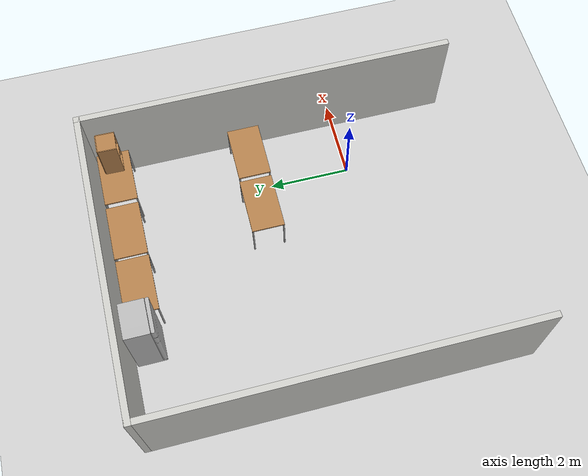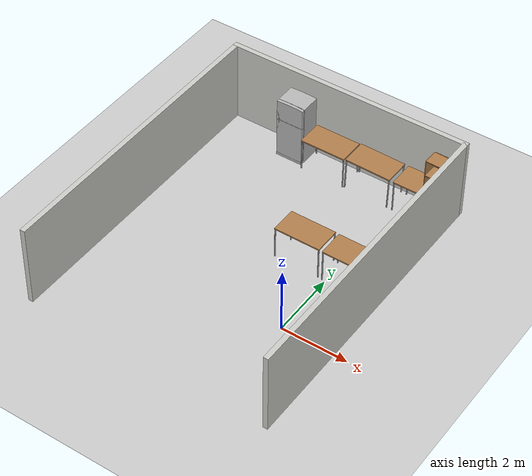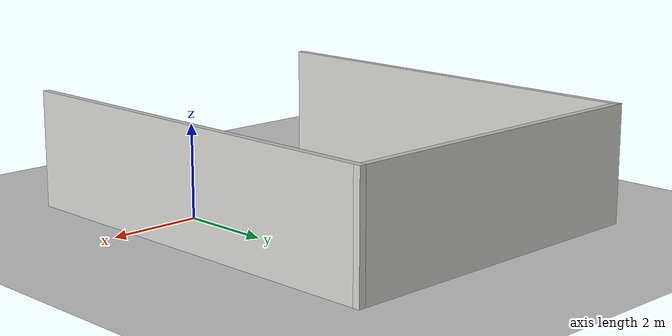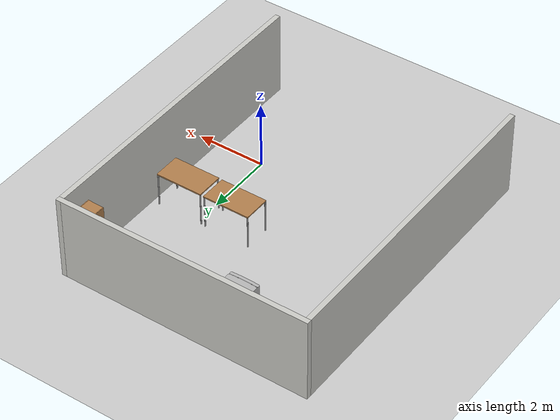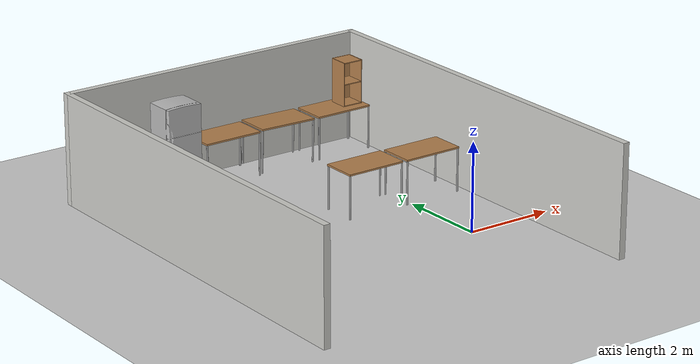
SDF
<sdf version="1.6">
 <world name="default">
  <model name="ground_plane">
   <static>1</static>
   <link name="link">
    <collision name="collision">
     <geometry><plane><normal>0 0 1</normal><size>100 100</size></plane></geometry>
     <surface><friction><ode><mu>100</mu><mu2>50</mu2></ode></friction></surface>
    </collision>
    <visual name="visual">
     <cast_shadows>0</cast_shadows>
     <geometry><plane><normal>0 0 1</normal><size>100 100</size></plane></geometry>
     <material>
      <script><uri>file://media/materials/scripts/gazebo.material</uri><name>Gazebo/Grey</name></script>
     </material>
    </visual>
   </link>
  </model>
  <light name="sun" type="directional">
   <pose>0 0 10 0 -0 0</pose>
   <diffuse>0.8 0.8 0.8 1</diffuse>
   <specular>0.1 0.1 0.1 1</specular>
   <attenuation>
    <range>1000</range>
    <constant>0.9</constant>
    <linear>0.01</linear>
    <quadratic>0.001</quadratic>
   </attenuation>
   <direction>-0.5 0.5 -1</direction>
  </light>
  <gravity>0 0 -9.8</gravity>
  <magnetic_field>6e-06 2.3e-05 -4.2e-05</magnetic_field>
  <atmosphere type="adiabatic"/>
  <physics name="default_physics" default="0" type="ode">
   <max_step_size>0.001</max_step_size>
   <real_time_factor>1</real_time_factor>
   <real_time_update_rate>1000</real_time_update_rate>
  </physics>
  <scene><ambient>0.4 0.4 0.4 1</ambient><background>0.7 0.7 0.7 1</background><shadows>1</shadows></scene>
  <spherical_coordinates>
   <surface_model>EARTH_WGS84</surface_model>
   <latitude_deg>0</latitude_deg>
   <longitude_deg>0</longitude_deg>
   <elevation>0</elevation>
   <heading_deg>0</heading_deg>
  </spherical_coordinates>
  <model name="cabinet_1">
   <static>1</static>
   <link name="cabinet_bottom_plate">
    <inertial>
     <pose>0 0 -1 0 -0 0</pose>
     <inertia><ixx>2.05</ixx><ixy>0</ixy><ixz>0</ixz><iyy>2.05</iyy><iyz>0</iyz><izz>2.05</izz></inertia>
     <mass>25</mass>
    </inertial>
    <collision name="cabinet_bottom_plate_geom">
     <pose>0 0 0.01 0 -0 0</pose>
     <geometry><box><size>0.45 0.45 0.02</size></box></geometry>
    </collision>
    <visual name="cabinet_bottom_plate_geom_visual">
     <pose>0 0 0.01 0 -0 0</pose>
     <geometry><box><size>0.45 0.45 0.02</size></box></geometry>
     <material>
      <script><uri>file://media/materials/scripts/gazebo.material</uri><name>Gazebo/Wood</name></script>
     </material>
    </visual>
    <collision name="cabinet_bottom_plate_geom_cabinet_back_plate">
     <pose>0.235 0 0.51 0 -0 0</pose>
     <geometry><box><size>0.02 0.45 1.02</size></box></geometry>
    </collision>
    <visual name="cabinet_bottom_plate_geom_cabinet_back_plate_visual">
     <pose>0.235 0 0.51 0 -0 0</pose>
     <geometry><box><size>0.02 0.45 1.02</size></box></geometry>
     <material>
      <script><uri>file://media/materials/scripts/gazebo.material</uri><name>Gazebo/Wood</name></script>
     </material>
    </visual>
    <collision name="cabinet_bottom_plate_geom_cabinet_left_plate">
     <pose>0 0.235 0.51 0 -0 0</pose>
     <geometry><box><size>0.45 0.02 1.02</size></box></geometry>
    </collision>
    <visual name="cabinet_bottom_plate_geom_cabinet_left_plate_visual">
     <pose>0 0.235 0.51 0 -0 0</pose>
     <geometry><box><size>0.45 0.02 1.02</size></box></geometry>
     <material>
      <script><uri>file://media/materials/scripts/gazebo.material</uri><name>Gazebo/Wood</name></script>
     </material>
    </visual>
    <collision name="cabinet_bottom_plate_geom_cabinet_middle_plate">
     <pose>0 0 0.51 0 -0 0</pose>
     <geometry><box><size>0.45 0.45 0.02</size></box></geometry>
    </collision>
    <visual name="cabinet_bottom_plate_geom_cabinet_middle_plate_visual">
     <pose>0 0 0.51 0 -0 0</pose>
     <geometry><box><size>0.45 0.45 0.02</size></box></geometry>
     <material>
      <script><uri>file://media/materials/scripts/gazebo.material</uri><name>Gazebo/Wood</name></script>
     </material>
    </visual>
    <collision name="cabinet_bottom_plate_geom_cabinet_right_plate">
     <pose>0 -0.235 0.51 0 -0 0</pose>
     <geometry><box><size>0.45 0.02 1.02</size></box></geometry>
    </collision>
    <visual name="cabinet_bottom_plate_geom_cabinet_right_plate_visual">
     <pose>0 -0.235 0.51 0 -0 0</pose>
     <geometry><box><size>0.45 0.02 1.02</size></box></geometry>
     <material>
      <script><uri>file://media/materials/scripts/gazebo.material</uri><name>Gazebo/Wood</name></script>
     </material>
    </visual>
    <collision name="cabinet_bottom_plate_geom_cabinet_top_plate">
     <pose>0 0 1.01 0 -0 0</pose>
     <geometry><box><size>0.45 0.45 0.02</size></box></geometry>
    </collision>
    <visual name="cabinet_bottom_plate_geom_cabinet_top_plate_visual">
     <pose>0 0 1.01 0 -0 0</pose>
     <geometry><box><size>0.45 0.45 0.02</size></box></geometry>
     <material>
      <script><uri>file://media/materials/scripts/gazebo.material</uri><name>Gazebo/Wood</name></script>
     </material>
    </visual>
   </link>
   <pose>1.03519 5.73648 1.03813 0 -0 1.55134</pose>
  </model>
  <model name="table_0">
   <static>0</static>
   <link name="link">
    <collision name="surface">
     <pose>0 0 1 0 -0 0</pose>
     <geometry><box><size>1.5 0.8 0.03</size></box></geometry>
     <surface><friction><ode><mu>0.6</mu><mu2>0.6</mu2></ode></friction></surface>
    </collision>
    <visual name="visual1">
     <pose>0 0 1 0 -0 0</pose>
     <geometry><box><size>1.4 0.8 0.04</size></box></geometry>
     <material>
      <script><uri>file://media/materials/scripts/gazebo.material</uri><name>Gazebo/Wood</name></script>
     </material>
    </visual>
    <collision name="front_left_leg">
     <pose>0.68 0.38 0.5 0 -0 0</pose>
     <geometry><cylinder><radius>0.02</radius><length>1</length></cylinder></geometry>
    </collision>
    <visual name="front_left_leg">
     <pose>0.68 0.38 0.5 0 -0 0</pose>
     <geometry><cylinder><radius>0.02</radius><length>1</length></cylinder></geometry>
     <material>
      <script><uri>file://media/materials/scripts/gazebo.material</uri><name>Gazebo/Grey</name></script>
     </material>
    </visual>
    <collision name="front_right_leg">
     <pose>0.68 -0.38 0.5 0 -0 0</pose>
     <geometry><cylinder><radius>0.02</radius><length>1</length></cylinder></geometry>
    </collision>
    <visual name="front_right_leg">
     <pose>0.68 -0.38 0.5 0 -0 0</pose>
     <geometry><cylinder><radius>0.02</radius><length>1</length></cylinder></geometry>
     <material>
      <script><uri>file://media/materials/scripts/gazebo.material</uri><name>Gazebo/Grey</name></script>
     </material>
    </visual>
    <collision name="back_right_leg">
     <pose>-0.68 -0.38 0.5 0 -0 0</pose>
     <geometry><cylinder><radius>0.02</radius><length>1</length></cylinder></geometry>
    </collision>
    <visual name="back_right_leg">
     <pose>-0.68 -0.38 0.5 0 -0 0</pose>
     <geometry><cylinder><radius>0.02</radius><length>1</length></cylinder></geometry>
     <material>
      <script><uri>file://media/materials/scripts/gazebo.material</uri><name>Gazebo/Grey</name></script>
     </material>
    </visual>
    <collision name="back_left_leg">
     <pose>-0.68 0.38 0.5 0 -0 0</pose>
     <geometry><cylinder><radius>0.02</radius><length>1</length></cylinder></geometry>
    </collision>
    <visual name="back_left_leg">
     <pose>-0.68 0.38 0.5 0 -0 0</pose>
     <geometry><cylinder><radius>0.02</radius><length>1</length></cylinder></geometry>
     <material>
      <script><uri>file://media/materials/scripts/gazebo.material</uri><name>Gazebo/Grey</name></script>
     </material>
    </visual>
    <inertial>
     <inertia><ixx>1</ixx><ixy>0</ixy><ixz>0</ixz><iyy>1</iyy><iyz>0</iyz><izz>1</izz></inertia>
     <mass>1</mass>
    </inertial>
   </link>
   <pose>0.667356 5.73439 -2e-06 -1e-06 3e-06 -4e-05</pose>
  </model>
  <plugin name="some_shit" filename="libgazebo_tutorials.so"/>
  <model name="table">
   <static>0</static>
   <link name="link">
    <collision name="surface">
     <pose>0 0 1 0 -0 0</pose>
     <geometry><box><size>1.5 0.8 0.03</size></box></geometry>
     <surface><friction><ode><mu>0.6</mu><mu2>0.6</mu2></ode></friction></surface>
    </collision>
    <visual name="visual1">
     <pose>0 0 1 0 -0 0</pose>
     <geometry><box><size>1.4 0.8 0.04</size></box></geometry>
     <material>
      <script><uri>file://media/materials/scripts/gazebo.material</uri><name>Gazebo/Wood</name></script>
     </material>
    </visual>
    <collision name="front_left_leg">
     <pose>0.68 0.38 0.5 0 -0 0</pose>
     <geometry><cylinder><radius>0.02</radius><length>1</length></cylinder></geometry>
    </collision>
    <visual name="front_left_leg">
     <pose>0.68 0.38 0.5 0 -0 0</pose>
     <geometry><cylinder><radius>0.02</radius><length>1</length></cylinder></geometry>
     <material>
      <script><uri>file://media/materials/scripts/gazebo.material</uri><name>Gazebo/Grey</name></script>
     </material>
    </visual>
    <collision name="front_right_leg">
     <pose>0.68 -0.38 0.5 0 -0 0</pose>
     <geometry><cylinder><radius>0.02</radius><length>1</length></cylinder></geometry>
    </collision>
    <visual name="front_right_leg">
     <pose>0.68 -0.38 0.5 0 -0 0</pose>
     <geometry><cylinder><radius>0.02</radius><length>1</length></cylinder></geometry>
     <material>
      <script><uri>file://media/materials/scripts/gazebo.material</uri><name>Gazebo/Grey</name></script>
     </material>
    </visual>
    <collision name="back_right_leg">
     <pose>-0.68 -0.38 0.5 0 -0 0</pose>
     <geometry><cylinder><radius>0.02</radius><length>1</length></cylinder></geometry>
    </collision>
    <visual name="back_right_leg">
     <pose>-0.68 -0.38 0.5 0 -0 0</pose>
     <geometry><cylinder><radius>0.02</radius><length>1</length></cylinder></geometry>
     <material>
      <script><uri>file://media/materials/scripts/gazebo.material</uri><name>Gazebo/Grey</name></script>
     </material>
    </visual>
    <collision name="back_left_leg">
     <pose>-0.68 0.38 0.5 0 -0 0</pose>
     <geometry><cylinder><radius>0.02</radius><length>1</length></cylinder></geometry>
    </collision>
    <visual name="back_left_leg">
     <pose>-0.68 0.38 0.5 0 -0 0</pose>
     <geometry><cylinder><radius>0.02</radius><length>1</length></cylinder></geometry>
     <material>
      <script><uri>file://media/materials/scripts/gazebo.material</uri><name>Gazebo/Grey</name></script>
     </material>
    </visual>
    <inertial>
     <inertia><ixx>1</ixx><ixy>0</ixy><ixz>0</ixz><iyy>1</iyy><iyz>0</iyz><izz>1</izz></inertia>
     <mass>1</mass>
    </inertial>
   </link>
   <pose>-2.30023 5.7343 -2e-06 -0 3e-06 -8e-06</pose>
  </model>
  <model name="table_1">
   <static>0</static>
   <link name="link">
    <collision name="surface">
     <pose>0 0 1 0 -0 0</pose>
     <geometry><box><size>1.5 0.8 0.03</size></box></geometry>
     <surface><friction><ode><mu>0.6</mu><mu2>0.6</mu2></ode></friction></surface>
    </collision>
    <visual name="visual1">
     <pose>0 0 1 0 -0 0</pose>
     <geometry><box><size>1.4 0.8 0.04</size></box></geometry>
     <material>
      <script><uri>file://media/materials/scripts/gazebo.material</uri><name>Gazebo/Wood</name></script>
     </material>
    </visual>
    <collision name="front_left_leg">
     <pose>0.68 0.38 0.5 0 -0 0</pose>
     <geometry><cylinder><radius>0.02</radius><length>1</length></cylinder></geometry>
    </collision>
    <visual name="front_left_leg">
     <pose>0.68 0.38 0.5 0 -0 0</pose>
     <geometry><cylinder><radius>0.02</radius><length>1</length></cylinder></geometry>
     <material>
      <script><uri>file://media/materials/scripts/gazebo.material</uri><name>Gazebo/Grey</name></script>
     </material>
    </visual>
    <collision name="front_right_leg">
     <pose>0.68 -0.38 0.5 0 -0 0</pose>
     <geometry><cylinder><radius>0.02</radius><length>1</length></cylinder></geometry>
    </collision>
    <visual name="front_right_leg">
     <pose>0.68 -0.38 0.5 0 -0 0</pose>
     <geometry><cylinder><radius>0.02</radius><length>1</length></cylinder></geometry>
     <material>
      <script><uri>file://media/materials/scripts/gazebo.material</uri><name>Gazebo/Grey</name></script>
     </material>
    </visual>
    <collision name="back_right_leg">
     <pose>-0.68 -0.38 0.5 0 -0 0</pose>
     <geometry><cylinder><radius>0.02</radius><length>1</length></cylinder></geometry>
    </collision>
    <visual name="back_right_leg">
     <pose>-0.68 -0.38 0.5 0 -0 0</pose>
     <geometry><cylinder><radius>0.02</radius><length>1</length></cylinder></geometry>
     <material>
      <script><uri>file://media/materials/scripts/gazebo.material</uri><name>Gazebo/Grey</name></script>
     </material>
    </visual>
    <collision name="back_left_leg">
     <pose>-0.68 0.38 0.5 0 -0 0</pose>
     <geometry><cylinder><radius>0.02</radius><length>1</length></cylinder></geometry>
    </collision>
    <visual name="back_left_leg">
     <pose>-0.68 0.38 0.5 0 -0 0</pose>
     <geometry><cylinder><radius>0.02</radius><length>1</length></cylinder></geometry>
     <material>
      <script><uri>file://media/materials/scripts/gazebo.material</uri><name>Gazebo/Grey</name></script>
     </material>
    </visual>
    <inertial>
     <inertia><ixx>1</ixx><ixy>0</ixy><ixz>0</ixz><iyy>1</iyy><iyz>0</iyz><izz>1</izz></inertia>
     <mass>1</mass>
    </inertial>
   </link>
   <pose>-0.871006 5.73829 0.015105 -3e-06 0.021582 -1.1e-05</pose>
  </model>
  <model name="Fridge">
   <pose>-3.90809 5.4327 0 0 -0 0</pose>
   <static>1</static>
   <link name="base">
    <visual name="visual">
     <geometry><mesh><uri>model://fridge/model.dae</uri><scale>1 1 1</scale></mesh></geometry>
    </visual>
    <collision name="collision">
     <geometry><mesh><uri>model://fridge/model.dae</uri><scale>1 1 1</scale></mesh></geometry>
    </collision>
   </link>
  </model>
  <model name="table_2">
   <static>0</static>
   <link name="link">
    <collision name="surface">
     <pose>0 0 1 0 -0 0</pose>
     <geometry><box><size>1.5 0.8 0.03</size></box></geometry>
     <surface><friction><ode><mu>0.6</mu><mu2>0.6</mu2></ode></friction></surface>
    </collision>
    <visual name="visual1">
     <pose>0 0 1 0 -0 0</pose>
     <geometry><box><size>1.4 0.8 0.04</size></box></geometry>
     <material>
      <script><uri>file://media/materials/scripts/gazebo.material</uri><name>Gazebo/Wood</name></script>
     </material>
    </visual>
    <collision name="front_left_leg">
     <pose>0.68 0.38 0.5 0 -0 0</pose>
     <geometry><cylinder><radius>0.02</radius><length>1</length></cylinder></geometry>
    </collision>
    <visual name="front_left_leg">
     <pose>0.68 0.38 0.5 0 -0 0</pose>
     <geometry><cylinder><radius>0.02</radius><length>1</length></cylinder></geometry>
     <material>
      <script><uri>file://media/materials/scripts/gazebo.material</uri><name>Gazebo/Grey</name></script>
     </material>
    </visual>
    <collision name="front_right_leg">
     <pose>0.68 -0.38 0.5 0 -0 0</pose>
     <geometry><cylinder><radius>0.02</radius><length>1</length></cylinder></geometry>
    </collision>
    <visual name="front_right_leg">
     <pose>0.68 -0.38 0.5 0 -0 0</pose>
     <geometry><cylinder><radius>0.02</radius><length>1</length></cylinder></geometry>
     <material>
      <script><uri>file://media/materials/scripts/gazebo.material</uri><name>Gazebo/Grey</name></script>
     </material>
    </visual>
    <collision name="back_right_leg">
     <pose>-0.68 -0.38 0.5 0 -0 0</pose>
     <geometry><cylinder><radius>0.02</radius><length>1</length></cylinder></geometry>
    </collision>
    <visual name="back_right_leg">
     <pose>-0.68 -0.38 0.5 0 -0 0</pose>
     <geometry><cylinder><radius>0.02</radius><length>1</length></cylinder></geometry>
     <material>
      <script><uri>file://media/materials/scripts/gazebo.material</uri><name>Gazebo/Grey</name></script>
     </material>
    </visual>
    <collision name="back_left_leg">
     <pose>-0.68 0.38 0.5 0 -0 0</pose>
     <geometry><cylinder><radius>0.02</radius><length>1</length></cylinder></geometry>
    </collision>
    <visual name="back_left_leg">
     <pose>-0.68 0.38 0.5 0 -0 0</pose>
     <geometry><cylinder><radius>0.02</radius><length>1</length></cylinder></geometry>
     <material>
      <script><uri>file://media/materials/scripts/gazebo.material</uri><name>Gazebo/Grey</name></script>
     </material>
    </visual>
    <inertial>
     <inertia><ixx>1</ixx><ixy>0</ixy><ixz>0</ixz><iyy>1</iyy><iyz>0</iyz><izz>1</izz></inertia>
     <mass>1</mass>
    </inertial>
   </link>
   <pose>0.569748 2.42399 -1e-06 -1e-06 -0 2.3e-05</pose>
  </model>
  <model name="table_3">
   <static>0</static>
   <link name="link">
    <collision name="surface">
     <pose>0 0 1 0 -0 0</pose>
     <geometry><box><size>1.5 0.8 0.03</size></box></geometry>
     <surface><friction><ode><mu>0.6</mu><mu2>0.6</mu2></ode></friction></surface>
    </collision>
    <visual name="visual1">
     <pose>0 0 1 0 -0 0</pose>
     <geometry><box><size>1.4 0.8 0.04</size></box></geometry>
     <material>
      <script><uri>file://media/materials/scripts/gazebo.material</uri><name>Gazebo/Wood</name></script>
     </material>
    </visual>
    <collision name="front_left_leg">
     <pose>0.68 0.38 0.5 0 -0 0</pose>
     <geometry><cylinder><radius>0.02</radius><length>1</length></cylinder></geometry>
    </collision>
    <visual name="front_left_leg">
     <pose>0.68 0.38 0.5 0 -0 0</pose>
     <geometry><cylinder><radius>0.02</radius><length>1</length></cylinder></geometry>
     <material>
      <script><uri>file://media/materials/scripts/gazebo.material</uri><name>Gazebo/Grey</name></script>
     </material>
    </visual>
    <collision name="front_right_leg">
     <pose>0.68 -0.38 0.5 0 -0 0</pose>
     <geometry><cylinder><radius>0.02</radius><length>1</length></cylinder></geometry>
    </collision>
    <visual name="front_right_leg">
     <pose>0.68 -0.38 0.5 0 -0 0</pose>
     <geometry><cylinder><radius>0.02</radius><length>1</length></cylinder></geometry>
     <material>
      <script><uri>file://media/materials/scripts/gazebo.material</uri><name>Gazebo/Grey</name></script>
     </material>
    </visual>
    <collision name="back_right_leg">
     <pose>-0.68 -0.38 0.5 0 -0 0</pose>
     <geometry><cylinder><radius>0.02</radius><length>1</length></cylinder></geometry>
    </collision>
    <visual name="back_right_leg">
     <pose>-0.68 -0.38 0.5 0 -0 0</pose>
     <geometry><cylinder><radius>0.02</radius><length>1</length></cylinder></geometry>
     <material>
      <script><uri>file://media/materials/scripts/gazebo.material</uri><name>Gazebo/Grey</name></script>
     </material>
    </visual>
    <collision name="back_left_leg">
     <pose>-0.68 0.38 0.5 0 -0 0</pose>
     <geometry><cylinder><radius>0.02</radius><length>1</length></cylinder></geometry>
    </collision>
    <visual name="back_left_leg">
     <pose>-0.68 0.38 0.5 0 -0 0</pose>
     <geometry><cylinder><radius>0.02</radius><length>1</length></cylinder></geometry>
     <material>
      <script><uri>file://media/materials/scripts/gazebo.material</uri><name>Gazebo/Grey</name></script>
     </material>
    </visual>
    <inertial>
     <inertia><ixx>1</ixx><ixy>0</ixy><ixz>0</ixz><iyy>1</iyy><iyz>0</iyz><izz>1</izz></inertia>
     <mass>1</mass>
    </inertial>
   </link>
   <pose>-0.930254 2.43648 -1e-06 1e-06 -0 1.8e-05</pose>
  </model>
  <model name="kitchen1">
   <pose>-2.14958 1.71104 0 0 -0 0</pose>
   <link name="Wall_0">
    <collision name="Wall_0_Collision">
     <geometry><box><size>9.25 0.15 2.5</size></box></geometry>
     <pose>0 0 1.25 0 -0 0</pose>
    </collision>
    <visual name="Wall_0_Visual">
     <pose>0 0 1.25 0 -0 0</pose>
     <geometry><box><size>9.25 0.15 2.5</size></box></geometry>
     <material>
      <script><uri>file://media/materials/scripts/gazebo.material</uri><name>Gazebo/CeilingTiled</name></script>
      <ambient>1 1 1 1</ambient>
     </material>
    </visual>
    <pose>3.675 0 0 0 -0 1.5708</pose>
   </link>
   <link name="Wall_2">
    <collision name="Wall_2_Collision">
     <geometry><box><size>7.5 0.15 2.5</size></box></geometry>
     <pose>0 0 1.25 0 -0 0</pose>
    </collision>
    <visual name="Wall_2_Visual">
     <pose>0 0 1.25 0 -0 0</pose>
     <geometry><box><size>7.5 0.15 2.5</size></box></geometry>
     <material>
      <script><uri>file://media/materials/scripts/gazebo.material</uri><name>Gazebo/CeilingTiled</name></script>
      <ambient>1 1 1 1</ambient>
     </material>
    </visual>
    <pose>0 4.55 0 0 -0 3.14159</pose>
   </link>
   <link name="Wall_3">
    <collision name="Wall_3_Collision">
     <geometry><box><size>9.25 0.15 2.5</size></box></geometry>
     <pose>0 0 1.25 0 -0 0</pose>
    </collision>
    <visual name="Wall_3_Visual">
     <pose>0 0 1.25 0 -0 0</pose>
     <geometry><box><size>9.25 0.15 2.5</size></box></geometry>
     <material>
      <script><uri>file://media/materials/scripts/gazebo.material</uri><name>Gazebo/CeilingTiled</name></script>
      <ambient>1 1 1 1</ambient>
     </material>
    </visual>
    <pose>-3.675 0 0 0 0 -1.5708</pose>
   </link>
   <static>1</static>
  </model>
 </world>
</sdf>
